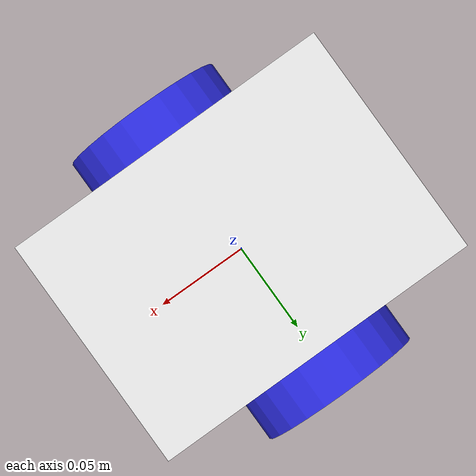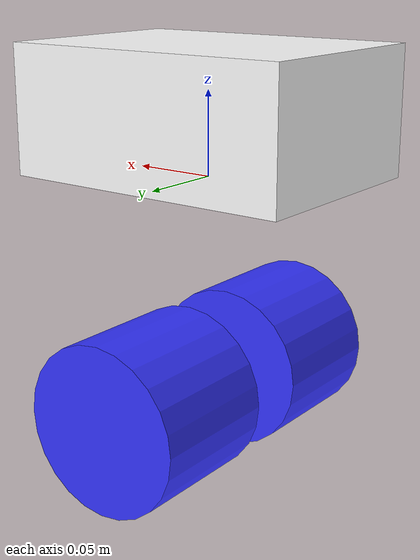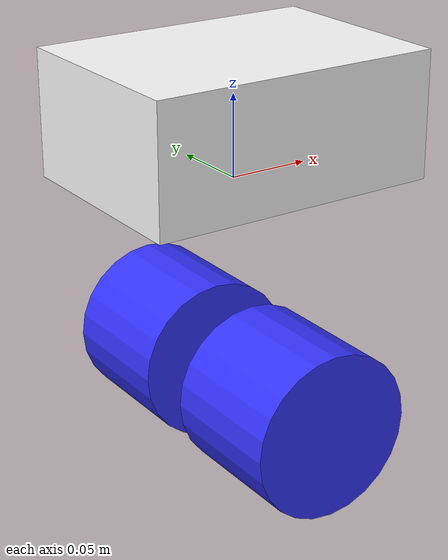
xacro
<?xml version="1.0"?>
<robot xmlns:xacro="http://www.ros.org/wiki/xacro">

    <xacro:include filename="inertial_macros.xacro"/>

    <material name="white">
        <color rgba=" 1 1 1 1"/>
    </material>

    <material name="orange">
        <color rgba=" 1 0.3 0.1 1"/>
    </material>For

    <material name="blue">
        <color rgba=" 0.2 0.2 1 1"/>
    </material>

    <material name="black">
        <color rgba="0 0 0 1"/>
    </material>

    <material name="red">
        <color rgba="1 0 0 1"/>
    </material>

    <link name="base_link">

    </link>
    <joint name="base_footprint_joint" type = "fixed">
      <parent link="base_link"/>
      <child link="base_footprint"/>
      <origin xyz="0 0 0" rpy="0 0 0"/>
    </joint>

    <link name="base_footprint">

    </link>

    <joint name="chassis_joint" type="fixed">
        <parent link="base_link"/>
        <child link="chassis"/>
        <origin xyz="0 0 0"/>
    </joint>

    <link name="chassis">
        <visual>
            <origin xyz="0 0 0.0381"/>
            <geometry>
                <box size="0.178 0.127 0.0762"/>
            </geometry>
            <material name="white"/>
        </visual>
        <collision>
            <origin xyz="0 0 0.0381"/>
            <geometry>
                <box size="0.178 0.127 0.0762"/>
            </geometry>
        </collision>
        <xacro:inertial_box mass="0.68" x="0.178" y="0.127" z="0.0762">
            <origin xyz="0 0 0.0381" rpy="0 0 0"/>
        </xacro:inertial_box>

    </link>

    <gazebo reference="chassis">
        <material>Gazebo/White</material>
    </gazebo>

    <joint name="left_wheel_joint" type="continuous">
        <parent link="base_link"/>
        <child link="left_wheel"/>
        <origin xyz="0 .02 -0.125" rpy="-${pi/2} 0 0"/>
        <axis xyz="0 0 1"/>
    </joint>

    <link name="left_wheel">
        <visual>
            <origin xyz="0 0 0.0381"/>
            <geometry>
                <cylinder radius="0.05" length="0.08"/>
            </geometry>
            <material name="blue"/>
        </visual>
        <collision>
            <origin xyz="0 0 0.0381"/>
            <geometry>
                <cylinder radius="0.05" length="0.08"/>
            </geometry>
        </collision>
        <xacro:inertial_cylinder mass="0.1" length="0.08" radius="0.05">
            <origin xyz="0 0 0.0" rpy="0 0 0"/>
        </xacro:inertial_cylinder>
    </link>
    <gazebo reference="left_wheel">
        <material>Gazebo/Blue</material>
    </gazebo>

    <joint name="right_wheel_joint" type="continuous">
        <parent link="base_link"/>
        <child link="right_wheel"/>
        <origin xyz="0 -.02 -0.125" rpy="${pi/2} 0 0"/>
        <axis xyz="0 0 -1"/>
    </joint>

    <link name="right_wheel">
        <visual>
            <origin xyz="0 0 0.0381"/>
            <geometry>
                <cylinder radius="0.05" length="0.08"/>
            </geometry>
            <material name="blue"/>
        </visual>
        <collision>
            <origin xyz="0 0 0.0381"/>
            <geometry>
                <cylinder radius="0.05" length="0.08"/>
            </geometry>
        </collision>
        <xacro:inertial_cylinder mass="0.1" length="0.08" radius=".05">
            <origin xyz="0 0 0.0" rpy="0 0 0"/>
        </xacro:inertial_cylinder>
    </link>

    <gazebo reference="right_wheel">
        <material>Gazebo/Blue</material>
    </gazebo>

</robot>
